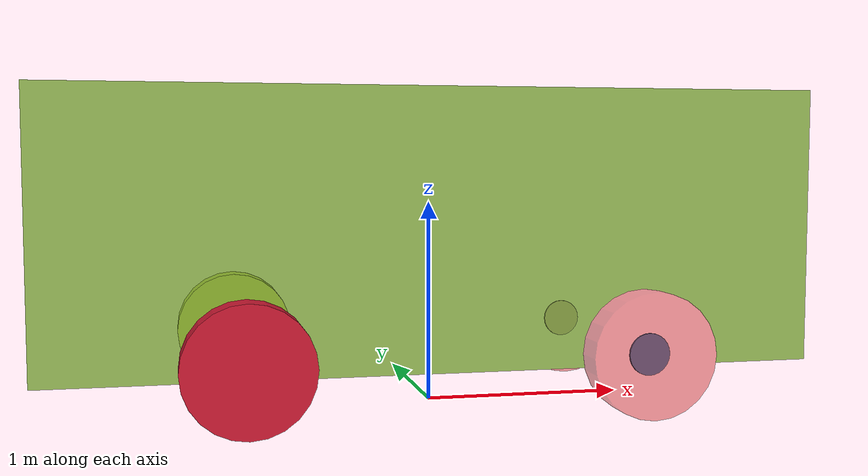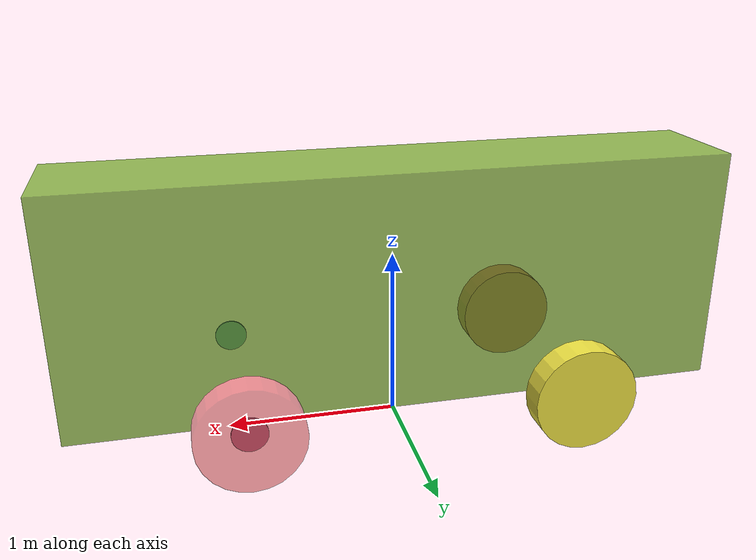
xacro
<robot name="classb_car" xmlns:xacro="http://www.ros.org/wiki/xacro">

    <xacro:property name="PI" value="3.141"/>

    <xacro:property name="base_length" value="3.8"/>
    <xacro:property name="base_width" value="0.68"/>
    <xacro:property name="base_height" value="1.370"/>
    <xacro:property name="base_collision_height" value="0.875"/>
    <xacro:property name="base_mass" value="2080"/>
    <xacro:property name="base_mass_ixx" value="343"/>
    <xacro:property name="base_mass_iyy" value="728"/>
    <xacro:property name="base_mass_izz" value="7508.800"/>

    <xacro:property name="rear_tyre_x" value="0.945"/>
    <xacro:property name="rear_tyre_y" value="0.642"/>
    <xacro:property name="rear_tyre_r" value="0.3"/>
    <xacro:property name="rear_tyre_length" value="0.165"/>
    <xacro:property name="rear_tyre_mass" value="20"/>
    <xacro:property name="rear_tyre_mass_ixx" value="0.5"/>
    <xacro:property name="rear_tyre_mass_iyy" value="0.9"/>
    <xacro:property name="rear_tyre_mass_izz" value="0.5"/>

    <xacro:property name="front_tyre_x" value="0.923"/>
    <xacro:property name="front_tyre_y" value="0.642"/>
    <xacro:property name="front_tyre_r" value="0.3"/>
    <xacro:property name="front_tyre_length" value="0.165"/>
    <xacro:property name="front_tyre_mass" value="20"/>
    <xacro:property name="front_tyre_mass_ixx" value="0.5"/>
    <xacro:property name="front_tyre_mass_iyy" value="0.9"/>
    <xacro:property name="front_tyre_mass_izz" value="0.5"/>

    <xacro:property name="str_angle" value="0.6"/>
    <xacro:property name="str_length" value="0.01"/>
    <xacro:property name="str_radius" value="0.1"/>
    <xacro:property name="str_mass" value="5"/>
    <xacro:property name="str_mass_ixx" value="0.012"/>
    <xacro:property name="str_mass_iyy" value="0.025"/>
    <xacro:property name="str_mass_izz" value="0.012"/>

    <!--base_link part-->
    <link name="base_link">
      <visual>
        <geometry>
          <box size="${base_length} ${base_width} ${base_height}"/>
        </geometry>
        <material name="yellow">
          <color rgba="0.5 0.7 0.2 0.8" />
        </material>
        <origin xyz="0 0 ${base_collision_height}" rpy="0 0 0"/>
      </visual>
      <collision>
        <origin xyz="0 0 ${base_collision_height}" rpy="0 0 0"/>
        <geometry>
          <box size="${base_length} ${base_width} ${base_height}"/>
        </geometry>
      </collision>
    </link>
    <link name="main_mass" type="fixed">
      <inertial>
        <origin xyz="0 0 0" rpy="0 0 0"/>
        <mass value="${base_mass}"/>
        <inertia
          ixx="${base_mass_ixx}"  ixy="0.000000"  ixz="0.000000"
          iyy="${base_mass_iyy}"  iyz="0.000000"
          izz="${base_mass_izz}"/>
        </inertial>
    </link>
    <joint name="inertial_joint" type="fixed">
      <parent link="base_link"/>
      <child link="main_mass"/>
      <origin xyz="0 0 0" rpy="0 0 0"/>
    </joint>

    <!--rear_right_wheel part-->
    <link name="rear_right_wheel_link">
        <visual>
          <geometry>
            <cylinder length="${rear_tyre_length}" radius="${rear_tyre_r}"/>
          </geometry>
          <material name="red">
            <color rgba="0.8 0.1 0.2 0.9" />
          </material>
          <origin xyz="0 0 0" rpy="${PI/2} 0 0"/>
        </visual>
        <collision>
            <origin xyz="0 0 0" rpy="${PI/2} 0 0"/>
            <geometry>
                <cylinder length="${rear_tyre_length}" radius="${rear_tyre_r}"/>
            </geometry>
        </collision>
        <inertial>
          <origin xyz="0 0 0" rpy="0 0 0"/>
          <mass value="${rear_tyre_mass}"/>
          <inertia
            ixx="${rear_tyre_mass_ixx}"  ixy="0.000000"  ixz="0.000000"
            iyy="${rear_tyre_mass_iyy}"  iyz="0.000000"
            izz="${rear_tyre_mass_izz}"/>
        </inertial>
    </link>
    <joint name="rear_right_wheel_joint" type="continuous">
        <parent link="base_link"/>
        <child link="rear_right_wheel_link"/>
        <origin xyz="${-rear_tyre_x} ${-rear_tyre_y} ${rear_tyre_r}" rpy="0 0 0"/>
        <axis xyz="0 1 0"/>
        <dynamics damping="0.1"/>
        <limit effort="100000" velocity="10000" />
        <joint_properties damping="0.0" friction="0.0" />
    </joint>

    <!--rear_left_wheel part-->
    <link name="rear_left_wheel_link">
      <collision>
        <origin xyz="0 0 0" rpy="${PI/2} 0 0"/>
        <geometry>
          <cylinder length="${rear_tyre_length}" radius="${rear_tyre_r}"/>
        </geometry>
      </collision>
      <visual>
        <origin xyz="0 0 0" rpy="${PI/2} 0 0"/>
        <geometry>
          <cylinder length="${rear_tyre_length}" radius="${rear_tyre_r}"/>
        </geometry>
      </visual>
      <inertial>
        <origin xyz="0 0 0" rpy="0 0 0"/>
        <mass value="${rear_tyre_mass}"/>
        <inertia
          ixx="${rear_tyre_mass_ixx}"  ixy="0.000000"  ixz="0.000000"
          iyy="${rear_tyre_mass_iyy}"  iyz="0.000000"
          izz="${rear_tyre_mass_izz}"/>
      </inertial>
    </link>
    <joint name="rear_left_wheel_joint" type="continuous">
      <parent link="base_link"/>
      <child link="rear_left_wheel_link"/>
      <origin xyz="${-rear_tyre_x} ${rear_tyre_y} ${rear_tyre_r}" rpy="0 0 0"/>
      <axis xyz="0 1 0"/>
      <joint_properties damping="0.0" friction="0.0" />
      <limit effort="100000" velocity="10000" />
      <dynamics damping="0.1"/>
    </joint>

    <!--Front Right Steering part-->
    <link name="front_right_steering_link">
      <visual>
        <origin xyz="0 0 0" rpy="${PI/2} 0 0"/>
        <geometry>
          <cylinder length="${str_length}" radius="${str_radius}"/>
        </geometry>
      </visual>
      <inertial>
        <origin xyz="0 0 0" rpy="0 0 0"/>
        <mass value="${str_mass}"/>
        <inertia
        ixx="${str_mass_ixx}"  ixy="0.000000"  ixz="0.000000"
        iyy="${str_mass_iyy}"  iyz="0.000000"
        izz="${str_mass_izz}"/>
      </inertial>
    </link>
    <joint name="front_right_steering_joint" type="revolute">
      <parent link="base_link"/>
      <child link="front_right_steering_link"/>
      <origin xyz="${front_tyre_x} ${-front_tyre_y} ${front_tyre_r}" rpy="0 0 0"/>
      <axis xyz="0 0 1"/>
      <limit lower="${-str_angle}" upper="${str_angle}" effort="1000000.0" velocity="10000.0"/>
      <dynamics damping="10.0" friction="0.0"/>
    </joint>

    <!--Front Right Wheel part-->
    <link name="front_right_wheel_link">
      <collision>
        <origin xyz="0 0 0" rpy="${PI/2} 0 0"/>
        <geometry>
          <cylinder length="${front_tyre_length}" radius="${front_tyre_r}"/>
        </geometry>
      </collision>
      <visual>
        <origin xyz="0 0 0" rpy="${PI/2} 0 0"/>
        <geometry>
          <cylinder length="${front_tyre_length}" radius="${front_tyre_r}"/>
        </geometry>
        <material name="red">
          <color rgba="0.9 0.2 0.2 0.5" />
        </material>
      </visual>
      <inertial>
        <origin xyz="0 0 0" rpy="0 0 0"/>
        <mass value="${front_tyre_mass}"/>
        <inertia
          ixx="${front_tyre_mass_ixx}"  ixy="0.000000"  ixz="0.000000"
          iyy="${front_tyre_mass_iyy}"  iyz="0.000000"
          izz="${front_tyre_mass_izz}"/>
      </inertial>
    </link>
    <joint name="front_right_wheel_joint" type="continuous">
      <parent link="front_right_steering_link"/>
      <child link="front_right_wheel_link"/>
      <origin xyz="0 0 0" rpy="0 0 0"/>
      <axis xyz="0 1 0"/>
      <limit effort="1000000" velocity="10000" />
      <joint_properties damping="0.0" friction="0.0" />
      <dynamics damping="0.1"/>
    </joint>

    <!--Front Left Steering-->
    <link name="front_left_steering_link">
      <visual>
        <origin xyz="0 0 0" rpy="${PI/2} 0 0"/>
        <geometry>
          <cylinder length="${str_length}" radius="${str_radius}"/>
        </geometry>
      </visual>
      <inertial>
        <origin xyz="0 0 0" rpy="0 0 0"/>
        <mass value="${str_mass}"/>
        <inertia
        ixx="${str_mass_ixx}"  ixy="0.000000"  ixz="0.000000"
        iyy="${str_mass_iyy}"  iyz="0.000000"
        izz="${str_mass_izz}"/>
      </inertial>
    </link>
    <joint name="front_left_steering_joint" type="revolute">
      <parent link="base_link"/>
      <child link="front_left_steering_link"/>
      <origin xyz="${front_tyre_x} ${front_tyre_y} ${front_tyre_r}" rpy="0 0 0"/>
      <axis xyz="0 0 1"/>
      <limit lower="${-str_angle}" upper="${str_angle}" effort="1000000.0" velocity="10000.0"/>
      <dynamics damping="10.0" friction="0.0"/>
    </joint>

    <!--Front Left Wheel-->
    <link name="front_left_wheel_link">
      <collision>
        <origin xyz="0 0 0" rpy="${PI/2} 0 0"/>
        <geometry>
          <cylinder length="${front_tyre_length}" radius="${front_tyre_r}"/>
        </geometry>
      </collision>
      <visual>
        <origin xyz="0 0 0" rpy="${PI/2} 0 0"/>
        <geometry>
          <cylinder length="${front_tyre_length}" radius="${front_tyre_r}"/>
        </geometry>
        <material name="red">
          <color rgba="0.9 0.2 0.2 0.5" />
        </material>
      </visual>
      <inertial>
        <origin xyz="0 0 0" rpy="0 0 0"/>
        <mass value="${front_tyre_mass}"/>
        <inertia
          ixx="${front_tyre_mass_ixx}"  ixy="0.000000"  ixz="0.000000"
          iyy="${front_tyre_mass_iyy}"  iyz="0.000000"
          izz="${front_tyre_mass_izz}"/>
      </inertial>
    </link>
    <joint name="front_left_wheel_joint" type="continuous">
      <parent link="front_left_steering_link"/>
      <child link="front_left_wheel_link"/>
      <origin xyz="0 0 0" rpy="0 0 0"/>
      <axis xyz="0 1 0"/>
      <limit effort="1000000" velocity="10000" />
      <joint_properties damping="0.0" friction="0.0" />
      <dynamics damping="0.1"/>
    </joint>

    <!--tramsmission-->
    <transmission name="tran1">
      <type>transmission_interface/SimpleTransmission</type>
      <joint name="rear_right_wheel_joint">
        <hardwareInterface>hardware_interface/VelocityJointInterface</hardwareInterface>
      </joint>
      <actuator name="motor1">
        <hardwareInterface>hardware_interface/VelocityJointInterface</hardwareInterface>
        <mechanicalReduction>1</mechanicalReduction>
      </actuator>
    </transmission>

    <transmission name="tran2">
      <type>transmission_interface/SimpleTransmission</type>
      <joint name="rear_left_wheel_joint">
        <hardwareInterface>hardware_interface/VelocityJointInterface</hardwareInterface>
      </joint>
      <actuator name="motor2">
        <hardwareInterface>hardware_interface/VelocityJointInterface</hardwareInterface>
        <mechanicalReduction>1</mechanicalReduction>
      </actuator>
    </transmission>

    <!-- EPS and transmissions for the front steering -->
    <transmission name="tran3">
      <type>transmission_interface/SimpleTransmission</type>
      <joint name="front_right_steering_joint">
        <hardwareInterface>hardware_interface/EffortJointInterface</hardwareInterface>
      </joint>
      <actuator name="eps_right">
        <hardwareInterface>hardware_interface/EffortJointInterface</hardwareInterface>
        <mechanicalReduction>1</mechanicalReduction>
        <motorTorqueConstant>1000000</motorTorqueConstant>
      </actuator>
    </transmission>

    <transmission name="tran4">
      <type>transmission_interface/SimpleTransmission</type>
      <joint name="front_left_steering_joint">
        <hardwareInterface>hardware_interface/EffortJointInterface</hardwareInterface>
      </joint>
      <actuator name="eps_left">
        <hardwareInterface>hardware_interface/EffortJointInterface</hardwareInterface>
        <mechanicalReduction>1</mechanicalReduction>
        <motorTorqueConstant>1000000</motorTorqueConstant>
      </actuator>
    </transmission>

    <!-- Friction Parametres -->
    <gazebo reference="rear_right_wheel_link">
      <mu1>10000000</mu1>
      <mu2>10000000</mu2>
      <kp>10000000</kp>
      <kd>1</kd>
      <minDepth>0.01</minDepth>
      <maxVel>100</maxVel>
    </gazebo>

    <gazebo reference="rear_left_wheel_link">
      <mu1>10000000</mu1>
      <mu2>10000000</mu2>
      <kp>10000000</kp>
      <kd>1</kd>
      <minDepth>0.01</minDepth>
      <maxVel>100</maxVel>
    </gazebo>

    <gazebo reference="front_right_wheel_link">
      <mu1>10000000</mu1>
      <mu2>10000000</mu2>
      <kp>10000000</kp>
      <kd>1</kd>
      <minDepth>0.01</minDepth>
      <maxVel>100</maxVel>
    </gazebo>

    <gazebo reference="front_left_wheel_link">
      <mu1>10000000</mu1>
      <mu2>10000000</mu2>
      <kp>10000000</kp>
      <kd>1</kd>
      <minDepth>0.01</minDepth>
      <maxVel>100</maxVel>
    </gazebo>

    <!-- Gazebo Plugins -->
    <gazebo>
      <plugin name="gazebo_ros_control" filename="libgazebo_ros_control.so">
        <robotNamespace>/classb_car</robotNamespace>
        <robotParam>robot_description</robotParam>
        <robotSimType>gazebo_ros_control/DefaultRobotHWSim</robotSimType>
      </plugin>
    </gazebo>

    <gazebo>
      <plugin name="joint_state_publisher" filename="libgazebo_ros_joint_state_publisher.so">
        <jointName>rear_left_wheel_joint, rear_right_wheel_joint, front_left_steering_joint, front_right_steering_joint, front_right_wheel_joint, front_left_wheel_joint</jointName>
        <updateRate>50.0</updateRate>
        <robotNamespace>/classb_car</robotNamespace>
        <alwaysOn>true</alwaysOn>
      </plugin>
    </gazebo>

</robot>
